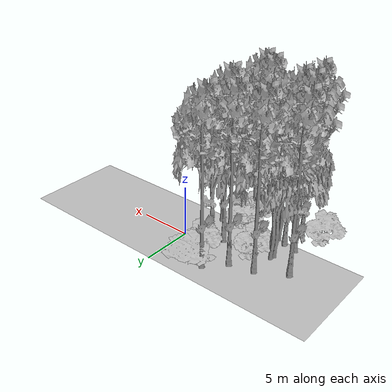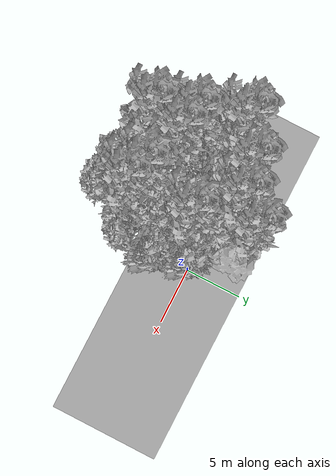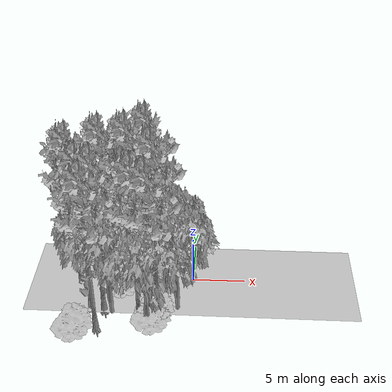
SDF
<sdf version="1.7">
 <world name="default">
  <model name="ground_plane">
   <static>1</static>
   <link name="link">
    <collision name="collision">
     <pose>-50 0 0 0 -0 0</pose>
     <geometry><plane><normal>0 0 1</normal><size>100 100</size></plane></geometry>
     <surface><contact><ode><min_depth>0.01</min_depth><max_vel>0</max_vel></ode></contact></surface>
    </collision>
    <visual name="grass">
     <cast_shadows>0</cast_shadows>
     <geometry>
      <mesh>
       <scale>0.5814285714285714 0.18142857142857144 0.1</scale>
       <uri>file://grass_plane/meshes/grass_plane.dae</uri>
      </mesh>
     </geometry>
    </visual>
   </link>
  </model>
  <model name="Tree 6">
   <static>1</static>
   <pose>-3.488642249334532 -1.3340177643138027 0 1.57079 -0 0</pose>
   <link name="link">
    <collision name="collision">
     <geometry><mesh><scale>3.5 5 3.5</scale><uri>model://tree_9/meshes/tree_9.obj</uri></mesh></geometry>
    </collision>
    <visual name="visual">
     <geometry><mesh><scale>3.5 5 3.5</scale><uri>model://tree_9/meshes/tree_9.obj</uri></mesh></geometry>
    </visual>
   </link>
  </model>
  <model name="Tree 15">
   <static>1</static>
   <pose>-3.059016480101249 2.886148568219056 0 1.57079 -0 0</pose>
   <link name="link">
    <collision name="collision">
     <geometry><mesh><scale>3 2 3</scale><uri>model://tree_3/meshes/tree_3.obj</uri></mesh></geometry>
    </collision>
    <visual name="visual">
     <geometry><mesh><scale>3 2 3</scale><uri>model://tree_3/meshes/tree_3.obj</uri></mesh></geometry>
    </visual>
   </link>
  </model>
  <model name="Tree 41">
   <static>1</static>
   <pose>-8.384244652193004 -1.8990153913368761 0 1.57079 -0 0</pose>
   <link name="link">
    <collision name="collision">
     <geometry><mesh><scale>3.5 5 3.5</scale><uri>model://tree_2/meshes/tree_2.obj</uri></mesh></geometry>
    </collision>
    <visual name="visual">
     <geometry><mesh><scale>3.5 5 3.5</scale><uri>model://tree_2/meshes/tree_2.obj</uri></mesh></geometry>
    </visual>
   </link>
  </model>
  <model name="Tree 44">
   <static>1</static>
   <pose>-4.689761001673844 -5.575206330258887 0 1.57079 -0 0</pose>
   <link name="link">
    <collision name="collision">
     <geometry><mesh><scale>3.5 5 3.5</scale><uri>model://tree_9/meshes/tree_9.obj</uri></mesh></geometry>
    </collision>
    <visual name="visual">
     <geometry><mesh><scale>3.5 5 3.5</scale><uri>model://tree_9/meshes/tree_9.obj</uri></mesh></geometry>
    </visual>
   </link>
  </model>
  <model name="Tree 78">
   <static>1</static>
   <pose>-8.228567643596854 0.6602233328547431 0 1.57079 -0 0</pose>
   <link name="link">
    <collision name="collision">
     <geometry><mesh><scale>3.5 5 3.5</scale><uri>model://tree_9/meshes/tree_9.obj</uri></mesh></geometry>
    </collision>
    <visual name="visual">
     <geometry><mesh><scale>3.5 5 3.5</scale><uri>model://tree_9/meshes/tree_9.obj</uri></mesh></geometry>
    </visual>
   </link>
  </model>
  <model name="Tree 98">
   <static>1</static>
   <pose>-2.1660733287028506 -1.3212831630848072 0 1.57079 -0 0</pose>
   <link name="link">
    <collision name="collision">
     <geometry><mesh><scale>3.5 5 3.5</scale><uri>model://tree_2/meshes/tree_2.obj</uri></mesh></geometry>
    </collision>
    <visual name="visual">
     <geometry><mesh><scale>3.5 5 3.5</scale><uri>model://tree_2/meshes/tree_2.obj</uri></mesh></geometry>
    </visual>
   </link>
  </model>
  <model name="Tree 100">
   <static>1</static>
   <pose>-8.07878747297007 -4.498854689858355 0 1.57079 -0 0</pose>
   <link name="link">
    <collision name="collision">
     <geometry><mesh><scale>3.5 5 3.5</scale><uri>model://tree_9/meshes/tree_9.obj</uri></mesh></geometry>
    </collision>
    <visual name="visual">
     <geometry><mesh><scale>3.5 5 3.5</scale><uri>model://tree_9/meshes/tree_9.obj</uri></mesh></geometry>
    </visual>
   </link>
  </model>
  <model name="Tree 112">
   <static>1</static>
   <pose>-7.394197062162405 -4.8452213005071325 0 1.57079 -0 0</pose>
   <link name="link">
    <collision name="collision">
     <geometry><mesh><scale>3.5 5 3.5</scale><uri>model://tree_2/meshes/tree_2.obj</uri></mesh></geometry>
    </collision>
    <visual name="visual">
     <geometry><mesh><scale>3.5 5 3.5</scale><uri>model://tree_2/meshes/tree_2.obj</uri></mesh></geometry>
    </visual>
   </link>
  </model>
  <model name="Tree 196">
   <static>1</static>
   <pose>-3.44034080631117 -5.022433667444071 0 1.57079 -0 0</pose>
   <link name="link">
    <collision name="collision">
     <geometry><mesh><scale>4 2.5 4</scale><uri>model://tree_1/meshes/tree_1.obj</uri></mesh></geometry>
    </collision>
    <visual name="visual">
     <geometry><mesh><scale>4 2.5 4</scale><uri>model://tree_1/meshes/tree_1.obj</uri></mesh></geometry>
    </visual>
   </link>
  </model>
  <model name="Tree 226">
   <static>1</static>
   <pose>-8.486214034047705 -2.3212339475501267 0 1.57079 -0 0</pose>
   <link name="link">
    <collision name="collision">
     <geometry><mesh><scale>3.5 5 3.5</scale><uri>model://tree_2/meshes/tree_2.obj</uri></mesh></geometry>
    </collision>
    <visual name="visual">
     <geometry><mesh><scale>3.5 5 3.5</scale><uri>model://tree_2/meshes/tree_2.obj</uri></mesh></geometry>
    </visual>
   </link>
  </model>
  <model name="Tree 227">
   <static>1</static>
   <pose>-6.784717769682693 -1.6471282393939628 0 1.57079 -0 0</pose>
   <link name="link">
    <collision name="collision">
     <geometry><mesh><scale>4 2.5 4</scale><uri>model://tree_1/meshes/tree_1.obj</uri></mesh></geometry>
    </collision>
    <visual name="visual">
     <geometry><mesh><scale>4 2.5 4</scale><uri>model://tree_1/meshes/tree_1.obj</uri></mesh></geometry>
    </visual>
   </link>
  </model>
  <model name="Tree 247">
   <static>1</static>
   <pose>-5.998105206371747 1.2319365034546337 0 1.57079 -0 0</pose>
   <link name="link">
    <collision name="collision">
     <geometry><mesh><scale>3.5 5 3.5</scale><uri>model://tree_9/meshes/tree_9.obj</uri></mesh></geometry>
    </collision>
    <visual name="visual">
     <geometry><mesh><scale>3.5 5 3.5</scale><uri>model://tree_9/meshes/tree_9.obj</uri></mesh></geometry>
    </visual>
   </link>
  </model>
  <model name="Tree 284">
   <static>1</static>
   <pose>-3.668150448873739 -6.21721437671191 0 1.57079 -0 0</pose>
   <link name="link">
    <collision name="collision">
     <geometry><mesh><scale>4 2.5 4</scale><uri>model://tree_1/meshes/tree_1.obj</uri></mesh></geometry>
    </collision>
    <visual name="visual">
     <geometry><mesh><scale>4 2.5 4</scale><uri>model://tree_1/meshes/tree_1.obj</uri></mesh></geometry>
    </visual>
   </link>
  </model>
  <model name="Tree 292">
   <static>1</static>
   <pose>-3.4612419326539694 -6.229060055251466 0 1.57079 -0 0</pose>
   <link name="link">
    <collision name="collision">
     <geometry><mesh><scale>3.5 5 3.5</scale><uri>model://tree_9/meshes/tree_9.obj</uri></mesh></geometry>
    </collision>
    <visual name="visual">
     <geometry><mesh><scale>3.5 5 3.5</scale><uri>model://tree_9/meshes/tree_9.obj</uri></mesh></geometry>
    </visual>
   </link>
  </model>
  <model name="Tree 345">
   <static>1</static>
   <pose>-1.3386586213071467 -4.0424204255053375 0 1.57079 -0 0</pose>
   <link name="link">
    <collision name="collision">
     <geometry><mesh><scale>3.5 5 3.5</scale><uri>model://tree_2/meshes/tree_2.obj</uri></mesh></geometry>
    </collision>
    <visual name="visual">
     <geometry><mesh><scale>3.5 5 3.5</scale><uri>model://tree_2/meshes/tree_2.obj</uri></mesh></geometry>
    </visual>
   </link>
  </model>
  <model name="Tree 349">
   <static>1</static>
   <pose>-10.583334732318242 -7.406573902131558 0 1.57079 -0 0</pose>
   <link name="link">
    <collision name="collision">
     <geometry><mesh><scale>4 2.5 4</scale><uri>model://tree_1/meshes/tree_1.obj</uri></mesh></geometry>
    </collision>
    <visual name="visual">
     <geometry><mesh><scale>4 2.5 4</scale><uri>model://tree_1/meshes/tree_1.obj</uri></mesh></geometry>
    </visual>
   </link>
  </model>
  <model name="Tree 366">
   <static>1</static>
   <pose>-3.7770030933324534 -7.188786487617217 0 1.57079 -0 0</pose>
   <link name="link">
    <collision name="collision">
     <geometry><mesh><scale>3.5 5 3.5</scale><uri>model://tree_2/meshes/tree_2.obj</uri></mesh></geometry>
    </collision>
    <visual name="visual">
     <geometry><mesh><scale>3.5 5 3.5</scale><uri>model://tree_2/meshes/tree_2.obj</uri></mesh></geometry>
    </visual>
   </link>
  </model>
  <model name="Tree 372">
   <static>1</static>
   <pose>-2.8133255026519777 0.9772772416357949 0 1.57079 -0 0</pose>
   <link name="link">
    <collision name="collision">
     <geometry><mesh><scale>4 2.5 4</scale><uri>model://tree_1/meshes/tree_1.obj</uri></mesh></geometry>
    </collision>
    <visual name="visual">
     <geometry><mesh><scale>4 2.5 4</scale><uri>model://tree_1/meshes/tree_1.obj</uri></mesh></geometry>
    </visual>
   </link>
  </model>
  <model name="Tree 377">
   <static>1</static>
   <pose>-10.820451990011236 -0.883124807763636 0 1.57079 -0 0</pose>
   <link name="link">
    <collision name="collision">
     <geometry><mesh><scale>3.5 5 3.5</scale><uri>model://tree_9/meshes/tree_9.obj</uri></mesh></geometry>
    </collision>
    <visual name="visual">
     <geometry><mesh><scale>3.5 5 3.5</scale><uri>model://tree_9/meshes/tree_9.obj</uri></mesh></geometry>
    </visual>
   </link>
  </model>
  <model name="Tree 439">
   <static>1</static>
   <pose>-9.32828939405099 -4.194166838269457 0 1.57079 -0 0</pose>
   <link name="link">
    <collision name="collision">
     <geometry><mesh><scale>3.5 5 3.5</scale><uri>model://tree_9/meshes/tree_9.obj</uri></mesh></geometry>
    </collision>
    <visual name="visual">
     <geometry><mesh><scale>3.5 5 3.5</scale><uri>model://tree_9/meshes/tree_9.obj</uri></mesh></geometry>
    </visual>
   </link>
  </model>
  <model name="Tree 446">
   <static>1</static>
   <pose>-4.365951268710134 2.9465369670288126 0 1.57079 -0 0</pose>
   <link name="link">
    <collision name="collision">
     <geometry><mesh><scale>3.5 5 3.5</scale><uri>model://tree_9/meshes/tree_9.obj</uri></mesh></geometry>
    </collision>
    <visual name="visual">
     <geometry><mesh><scale>3.5 5 3.5</scale><uri>model://tree_9/meshes/tree_9.obj</uri></mesh></geometry>
    </visual>
   </link>
  </model>
  <model name="Tree 491">
   <static>1</static>
   <pose>-8.476280703706706 -6.895606809392964 0 1.57079 -0 0</pose>
   <link name="link">
    <collision name="collision">
     <geometry><mesh><scale>3.5 5 3.5</scale><uri>model://tree_9/meshes/tree_9.obj</uri></mesh></geometry>
    </collision>
    <visual name="visual">
     <geometry><mesh><scale>3.5 5 3.5</scale><uri>model://tree_9/meshes/tree_9.obj</uri></mesh></geometry>
    </visual>
   </link>
  </model>
 </world>
</sdf>
